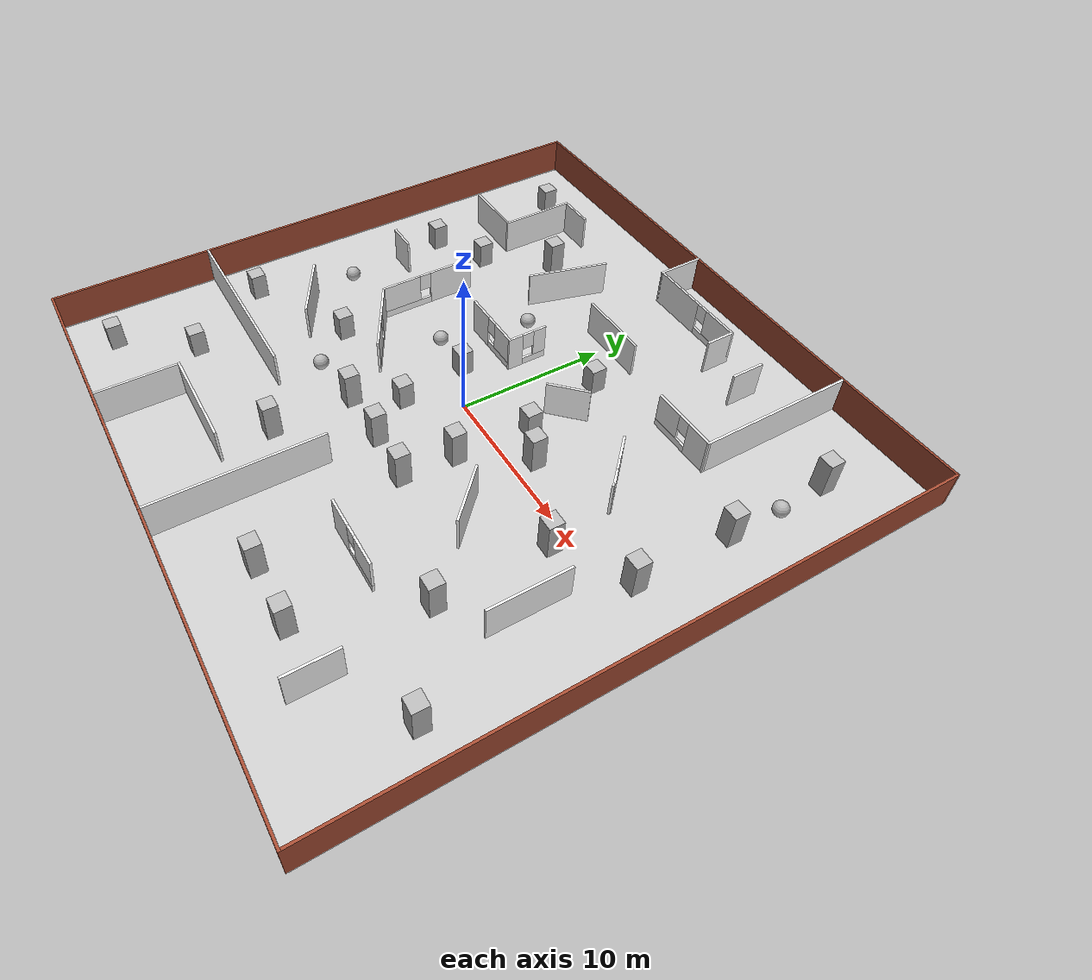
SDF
<sdf version="1.6">
 <world name="default">
  <light name="sun" type="directional">
   <pose>0 0 10 0 -0 0</pose>
   <diffuse>0.8 0.8 0.8 1</diffuse>
   <specular>0.2 0.2 0.2 1</specular>
   <attenuation>
    <range>1000</range>
    <constant>0.9</constant>
    <linear>0.01</linear>
    <quadratic>0.001</quadratic>
   </attenuation>
   <direction>-0.5 0.1 -0.9</direction>
  </light>
  <model name="my_ground_plane">
   <static>1</static>
   <link name="link">
    <collision name="collision">
     <geometry><plane><normal>0 0 1</normal><size>40 40</size></plane></geometry>
     <surface><friction><ode><mu>100</mu><mu2>50</mu2></ode></friction></surface>
    </collision>
    <visual name="visual">
     <cast_shadows>0</cast_shadows>
     <geometry><plane><normal>0 0 1</normal><size>40 40</size></plane></geometry>
     <material>
      <script>
       <uri>model://woodground/materials/scripts</uri>
       <uri>model://woodground/materials/textures</uri>
       <name>WoodGround/Image</name>
      </script>
     </material>
    </visual>
   </link>
   <pose>0.065028 0.039956 0 0 -0 0</pose>
  </model>
  <gravity>0 0 -9.8</gravity>
  <magnetic_field>6e-06 2.3e-05 -4.2e-05</magnetic_field>
  <atmosphere type="adiabatic"/>
  <physics name="default_physics" default="0" type="ode">
   <max_step_size>0.001</max_step_size>
   <real_time_factor>1</real_time_factor>
   <real_time_update_rate>1000</real_time_update_rate>
  </physics>
  <scene><ambient>0.4 0.4 0.4 1</ambient><background>0.7 0.7 0.7 1</background><shadows>1</shadows></scene>
  <audio><device>default</device></audio>
  <spherical_coordinates>
   <surface_model>EARTH_WGS84</surface_model>
   <latitude_deg>0</latitude_deg>
   <longitude_deg>0</longitude_deg>
   <elevation>0</elevation>
   <heading_deg>0</heading_deg>
  </spherical_coordinates>
  <model name="house_0">
   <pose>0 0.0174 0 0 -0 0</pose>
   <link name="Wall_0">
    <collision name="Wall_0_Collision">
     <geometry><box><size>40.15 0.15 2.5</size></box></geometry>
     <pose>0 0 1.25 0 -0 0</pose>
    </collision>
    <visual name="Wall_0_Visual">
     <pose>0 0 1.25 0 -0 0</pose>
     <geometry><box><size>40.15 0.15 2.5</size></box></geometry>
     <material>
      <script><uri>file://media/materials/scripts/gazebo.material</uri><name>Gazebo/Bricks</name></script>
      <ambient>1 1 1 1</ambient>
     </material>
     <meta><layer>0</layer></meta>
    </visual>
    <pose>0 -20.0174 0 0 -0 0</pose>
   </link>
   <link name="Wall_10">
    <collision name="Wall_10_Collision">
     <geometry><box><size>2.5 0.15 2.5</size></box></geometry>
     <pose>0 0 1.25 0 -0 0</pose>
    </collision>
    <visual name="Wall_10_Visual">
     <pose>0 0 1.25 0 -0 0</pose>
     <geometry><box><size>2.5 0.15 2.5</size></box></geometry>
     <material>
      <script><uri>file://media/materials/scripts/wallpaper.material</uri><name>wallpaper/wallpaper3</name></script>
      <ambient>1 1 1 1</ambient>
     </material>
     <meta><layer>0</layer></meta>
    </visual>
    <pose>-11.265 15.818 0 0 -0 0</pose>
   </link>
   <link name="Wall_13">
    <collision name="Wall_13_Collision">
     <geometry><box><size>11 0.15 2.5</size></box></geometry>
     <pose>0 0 1.25 0 -0 0</pose>
    </collision>
    <visual name="Wall_13_Visual">
     <pose>0 0 1.25 0 -0 0</pose>
     <geometry><box><size>11 0.15 2.5</size></box></geometry>
     <material>
      <script><uri>file://media/materials/scripts/wallpaper.material</uri><name>wallpaper/wallpaper4</name></script>
      <ambient>1 1 1 1</ambient>
     </material>
     <meta><layer>0</layer></meta>
    </visual>
    <pose>-0.021227 -14.5085 0 0 -0 1.5708</pose>
   </link>
   <link name="Wall_15">
    <collision name="Wall_15_Collision">
     <geometry><box><size>12.5 0.15 2.5</size></box></geometry>
     <pose>0 0 1.25 0 -0 0</pose>
    </collision>
    <visual name="Wall_15_Visual">
     <pose>0 0 1.25 0 -0 0</pose>
     <geometry><box><size>12.5 0.15 2.5</size></box></geometry>
     <material>
      <script><uri>file://media/materials/scripts/wallpaper.material</uri><name>wallpaper/wallpaper5</name></script>
      <ambient>1 1 1 1</ambient>
     </material>
     <meta><layer>0</layer></meta>
    </visual>
    <pose>-13.7911 -9.28806 0 0 -0 0</pose>
   </link>
   <link name="Wall_18">
    <collision name="Wall_18_Collision">
     <geometry><box><size>5.5 0.15 2.5</size></box></geometry>
     <pose>0 0 1.25 0 -0 0</pose>
    </collision>
    <visual name="Wall_18_Visual">
     <pose>0 0 1.25 0 -0 0</pose>
     <geometry><box><size>5.5 0.15 2.5</size></box></geometry>
     <material>
      <script><uri>file://media/materials/scripts/wallpaper.material</uri><name>wallpaper/wallpaper6</name></script>
      <ambient>1 1 1 1</ambient>
     </material>
     <meta><layer>0</layer></meta>
    </visual>
    <pose>-9.87128 -17.3196 0 0 -0 1.5708</pose>
   </link>
   <link name="Wall_2">
    <collision name="Wall_2_Collision">
     <geometry><box><size>40.15 0.15 2.5</size></box></geometry>
     <pose>0 0 1.25 0 -0 0</pose>
    </collision>
    <visual name="Wall_2_Visual">
     <pose>0 0 1.25 0 -0 0</pose>
     <geometry><box><size>40.15 0.15 2.5</size></box></geometry>
     <material>
      <script><uri>file://media/materials/scripts/gazebo.material</uri><name>Gazebo/Bricks</name></script>
      <ambient>1 1 1 1</ambient>
     </material>
     <meta><layer>0</layer></meta>
    </visual>
    <pose>-20 -0.01738 0 0 -0 1.5708</pose>
   </link>
   <link name="Wall_20">
    <collision name="Wall_20_Collision">
     <geometry><box><size>6.75 0.15 2.5</size></box></geometry>
     <pose>0 0 1.25 0 -0 0</pose>
    </collision>
    <visual name="Wall_20_Visual">
     <pose>0 0 1.25 0 -0 0</pose>
     <geometry><box><size>6.75 0.15 2.5</size></box></geometry>
     <material>
      <script><uri>file://media/materials/scripts/wallpaper.material</uri><name>wallpaper/wallpaper7</name></script>
      <ambient>1 1 1 1</ambient>
     </material>
     <meta><layer>0</layer></meta>
    </visual>
    <pose>-6.57128 -14.6446 0 0 -0 0</pose>
   </link>
   <link name="Wall_22">
    <collision name="Wall_22_Collision">
     <geometry><box><size>0.25 0.15 2.5</size></box></geometry>
     <pose>0 0 1.25 0 -0 0</pose>
    </collision>
    <visual name="Wall_22_Visual">
     <pose>0 0 1.25 0 -0 0</pose>
     <geometry><box><size>0.25 0.15 2.5</size></box></geometry>
     <material>
      <script><uri>file://media/materials/scripts/wallpaper.material</uri><name>wallpaper/wallpaper8</name></script>
      <ambient>1 1 1 1</ambient>
     </material>
     <meta><layer>0</layer></meta>
    </visual>
    <pose>11.211 3.05252 0 0 -0 2.0944</pose>
   </link>
   <link name="Wall_23">
    <pose>9.91319 4.36861 0 0 -0 2.35619</pose>
    <visual name="Wall_23_Visual_0">
     <pose>-1.28689 0 1.25 0 -0 0</pose>
     <geometry><box><size>1.17622 0.15 2.5</size></box></geometry>
     <material>
      <script><uri>file://media/materials/scripts/wallpaper.material</uri><name>wallpaper/wallpaper9</name></script>
      <ambient>1 1 1 1</ambient>
     </material>
     <meta><layer>0</layer></meta>
    </visual>
    <collision name="Wall_23_Collision_0">
     <geometry><box><size>1.17622 0.15 2.5</size></box></geometry>
     <pose>-1.28689 0 1.25 0 -0 0</pose>
    </collision>
    <visual name="Wall_23_Visual_1">
     <pose>0.588111 0 0.25 0 -0 0</pose>
     <geometry><box><size>2.57378 0.15 0.5</size></box></geometry>
     <material>
      <script>
       <uri>file://media/materials/scripts/wallpaper.material</uri>
       <name>wallpaper/wallpaper10</name>
      </script>
      <ambient>1 1 1 1</ambient>
     </material>
     <meta><layer>0</layer></meta>
    </visual>
    <collision name="Wall_23_Collision_1">
     <geometry><box><size>2.57378 0.15 0.5</size></box></geometry>
     <pose>0.588111 0 0.25 0 -0 0</pose>
    </collision>
    <visual name="Wall_23_Visual_2">
     <pose>0.988111 0 1.5 0 -0 0</pose>
     <geometry><box><size>1.77378 0.15 2</size></box></geometry>
     <material>
      <script>
       <uri>file://media/materials/scripts/wallpaper.material</uri>
       <name>wallpaper/wallpaper11</name>
      </script>
      <ambient>1 1 1 1</ambient>
     </material>
     <meta><layer>0</layer></meta>
    </visual>
    <collision name="Wall_23_Collision_2">
     <geometry><box><size>1.77378 0.15 2</size></box></geometry>
     <pose>0.988111 0 1.5 0 -0 0</pose>
    </collision>
    <visual name="Wall_23_Visual_3">
     <pose>-0.298779 0 1.9 0 -0 0</pose>
     <geometry><box><size>0.8 0.15 1.2</size></box></geometry>
     <material>
      <script>
       <uri>file://media/materials/scripts/wallpaper.material</uri>
       <name>wallpaper/wallpaper12</name>
      </script>
      <ambient>1 1 1 1</ambient>
     </material>
     <meta><layer>0</layer></meta>
    </visual>
    <collision name="Wall_23_Collision_3">
     <geometry><box><size>0.8 0.15 1.2</size></box></geometry>
     <pose>-0.298779 0 1.9 0 -0 0</pose>
    </collision>
   </link>
   <link name="Wall_25">
    <collision name="Wall_25_Collision">
     <geometry><box><size>4.75 0.15 2.5</size></box></geometry>
     <pose>0 0 1.25 0 -0 0</pose>
    </collision>
    <visual name="Wall_25_Visual">
     <pose>0 0 1.25 0 -0 0</pose>
     <geometry><box><size>4.75 0.15 2.5</size></box></geometry>
     <material>
      <script>
       <uri>file://media/materials/scripts/wallpaper.material</uri>
       <name>wallpaper/wallpaper13</name>
      </script>
      <ambient>1 1 1 1</ambient>
     </material>
     <meta><layer>0</layer></meta>
    </visual>
    <pose>0.382179 10.8403 0 0 -0 0</pose>
   </link>
   <link name="Wall_27">
    <pose>-10.116 2.82942 0 0 -0 -1.5708</pose>
    <visual name="Wall_27_Visual_0">
     <pose>-1.8027 0 1.25 0 -0 0</pose>
     <geometry><box><size>3.14461 0.15 2.5</size></box></geometry>
     <material>
      <script>
       <uri>file://media/materials/scripts/wallpaper.material</uri>
       <name>wallpaper/wallpaper11</name>
      </script>
      <ambient>1 1 1 1</ambient>
     </material>
     <meta><layer>0</layer></meta>
    </visual>
    <collision name="Wall_27_Collision_0">
     <geometry><box><size>3.14461 0.15 2.5</size></box></geometry>
     <pose>-1.8027 0 1.25 0 -0 0</pose>
    </collision>
    <visual name="Wall_27_Visual_1">
     <pose>1.5723 0 0.25 0 -0 0</pose>
     <geometry><box><size>3.60539 0.15 0.5</size></box></geometry>
     <material>
      <script>
       <uri>file://media/materials/scripts/wallpaper.material</uri>
       <name>wallpaper/wallpaper10</name>
      </script>
      <ambient>1 1 1 1</ambient>
     </material>
     <meta><layer>0</layer></meta>
    </visual>
    <collision name="Wall_27_Collision_1">
     <geometry><box><size>3.60539 0.15 0.5</size></box></geometry>
     <pose>1.5723 0 0.25 0 -0 0</pose>
    </collision>
    <visual name="Wall_27_Visual_2">
     <pose>1.9723 0 1.5 0 -0 0</pose>
     <geometry><box><size>2.80539 0.15 2</size></box></geometry>
     <material>
      <script><uri>file://media/materials/scripts/wallpaper.material</uri><name>wallpaper/wallpaper9</name></script>
      <ambient>1 1 1 1</ambient>
     </material>
     <meta><layer>0</layer></meta>
    </visual>
    <collision name="Wall_27_Collision_2">
     <geometry><box><size>2.80539 0.15 2</size></box></geometry>
     <pose>1.9723 0 1.5 0 -0 0</pose>
    </collision>
    <visual name="Wall_27_Visual_3">
     <pose>0.169607 0 1.9 0 -0 0</pose>
     <geometry><box><size>0.8 0.15 1.2</size></box></geometry>
     <material>
      <script><uri>file://media/materials/scripts/wallpaper.material</uri><name>wallpaper/wallpaper8</name></script>
      <ambient>1 1 1 1</ambient>
     </material>
     <meta><layer>0</layer></meta>
    </visual>
    <collision name="Wall_27_Collision_3">
     <geometry><box><size>0.8 0.15 1.2</size></box></geometry>
     <pose>0.169607 0 1.9 0 -0 0</pose>
    </collision>
   </link>
   <link name="Wall_28">
    <pose>-7.79938 -1.80808 0 0 -0 -0.523599</pose>
    <visual name="Wall_28_Visual_0">
     <pose>-1.51732 0 1.25 0 -0 0</pose>
     <geometry><box><size>2.46536 0.15 2.5</size></box></geometry>
     <material>
      <script><uri>file://media/materials/scripts/wallpaper.material</uri><name>wallpaper/wallpaper7</name></script>
      <ambient>1 1 1 1</ambient>
     </material>
     <meta><layer>0</layer></meta>
    </visual>
    <collision name="Wall_28_Collision_0">
     <geometry><box><size>2.46536 0.15 2.5</size></box></geometry>
     <pose>-1.51732 0 1.25 0 -0 0</pose>
    </collision>
    <visual name="Wall_28_Visual_1">
     <pose>1.23268 0 0.25 0 -0 0</pose>
     <geometry><box><size>3.03464 0.15 0.5</size></box></geometry>
     <material>
      <script><uri>file://media/materials/scripts/wallpaper.material</uri><name>wallpaper/wallpaper6</name></script>
      <ambient>1 1 1 1</ambient>
     </material>
     <meta><layer>0</layer></meta>
    </visual>
    <collision name="Wall_28_Collision_1">
     <geometry><box><size>3.03464 0.15 0.5</size></box></geometry>
     <pose>1.23268 0 0.25 0 -0 0</pose>
    </collision>
    <visual name="Wall_28_Visual_2">
     <pose>1.63268 0 1.5 0 -0 0</pose>
     <geometry><box><size>2.23464 0.15 2</size></box></geometry>
     <material>
      <script><uri>file://media/materials/scripts/wallpaper.material</uri><name>wallpaper/wallpaper5</name></script>
      <ambient>1 1 1 1</ambient>
     </material>
     <meta><layer>0</layer></meta>
    </visual>
    <collision name="Wall_28_Collision_2">
     <geometry><box><size>2.23464 0.15 2</size></box></geometry>
     <pose>1.63268 0 1.5 0 -0 0</pose>
    </collision>
    <visual name="Wall_28_Visual_3">
     <pose>0.115362 0 1.9 0 -0 0</pose>
     <geometry><box><size>0.8 0.15 1.2</size></box></geometry>
     <material>
      <script><uri>file://media/materials/scripts/wallpaper.material</uri><name>wallpaper/wallpaper4</name></script>
      <ambient>1 1 1 1</ambient>
     </material>
     <meta><layer>0</layer></meta>
    </visual>
    <collision name="Wall_28_Collision_3">
     <geometry><box><size>0.8 0.15 1.2</size></box></geometry>
     <pose>0.115362 0 1.9 0 -0 0</pose>
    </collision>
   </link>
   <link name="Wall_30">
    <collision name="Wall_30_Collision">
     <geometry><box><size>4 0.15 2.5</size></box></geometry>
     <pose>0 0 1.25 0 -0 0</pose>
    </collision>
    <visual name="Wall_30_Visual">
     <pose>0 0 1.25 0 -0 0</pose>
     <geometry><box><size>4 0.15 2.5</size></box></geometry>
     <material>
      <script><uri>file://media/materials/scripts/wallpaper.material</uri><name>wallpaper/wallpaper3</name></script>
      <ambient>1 1 1 1</ambient>
     </material>
     <meta><layer>0</layer></meta>
    </visual>
    <pose>7.70272 -4.16411 0 0 -0 -0.785398</pose>
   </link>
   <link name="Wall_32">
    <pose>6.92849 -10.7564 0 0 -0 0</pose>
    <visual name="Wall_32_Visual_0">
     <pose>-1.40369 0 1.25 0 -0 0</pose>
     <geometry><box><size>1.94263 0.15 2.5</size></box></geometry>
     <material>
      <script><uri>file://media/materials/scripts/wallpaper.material</uri><name>wallpaper/wallpaper2</name></script>
      <ambient>1 1 1 1</ambient>
     </material>
     <meta><layer>0</layer></meta>
    </visual>
    <collision name="Wall_32_Collision_0">
     <geometry><box><size>1.94263 0.15 2.5</size></box></geometry>
     <pose>-1.40369 0 1.25 0 -0 0</pose>
    </collision>
    <visual name="Wall_32_Visual_1">
     <pose>0.971313 0 0.25 0 -0 0</pose>
     <geometry><box><size>2.80737 0.15 0.5</size></box></geometry>
     <material>
      <script><uri>file://media/materials/scripts/wallpaper.material</uri><name>wallpaper/wallpaper1</name></script>
      <ambient>1 1 1 1</ambient>
     </material>
     <meta><layer>0</layer></meta>
    </visual>
    <collision name="Wall_32_Collision_1">
     <geometry><box><size>2.80737 0.15 0.5</size></box></geometry>
     <pose>0.971313 0 0.25 0 -0 0</pose>
    </collision>
    <visual name="Wall_32_Visual_2">
     <pose>1.37131 0 1.5 0 -0 0</pose>
     <geometry><box><size>2.00738 0.15 2</size></box></geometry>
     <material>
      <script><uri>file://media/materials/scripts/wallpaper.material</uri><name>wallpaper/wallpaper2</name></script>
      <ambient>1 1 1 1</ambient>
     </material>
     <meta><layer>0</layer></meta>
    </visual>
    <collision name="Wall_32_Collision_2">
     <geometry><box><size>2.00738 0.15 2</size></box></geometry>
     <pose>1.37131 0 1.5 0 -0 0</pose>
    </collision>
    <visual name="Wall_32_Visual_3">
     <pose>-0.032375 0 1.9 0 -0 0</pose>
     <geometry><box><size>0.8 0.15 1.2</size></box></geometry>
     <material>
      <script><uri>file://media/materials/scripts/wallpaper.material</uri><name>wallpaper/wallpaper3</name></script>
      <ambient>1 1 1 1</ambient>
     </material>
     <meta><layer>0</layer></meta>
    </visual>
    <collision name="Wall_32_Collision_3">
     <geometry><box><size>0.8 0.15 1.2</size></box></geometry>
     <pose>-0.032375 0 1.9 0 -0 0</pose>
    </collision>
   </link>
   <link name="Wall_34">
    <collision name="Wall_34_Collision">
     <geometry><box><size>3.25 0.15 2.5</size></box></geometry>
     <pose>0 0 1.25 0 -0 0</pose>
    </collision>
    <visual name="Wall_34_Visual">
     <pose>0 0 1.25 0 -0 0</pose>
     <geometry><box><size>3.25 0.15 2.5</size></box></geometry>
     <material>
      <script><uri>file://media/materials/scripts/wallpaper.material</uri><name>wallpaper/wallpaper4</name></script>
      <ambient>1 1 1 1</ambient>
     </material>
     <meta><layer>0</layer></meta>
    </visual>
    <pose>12.8879 -15.5692 0 0 -0 1.5708</pose>
   </link>
   <link name="Wall_36">
    <collision name="Wall_36_Collision">
     <geometry><box><size>2.25 0.15 2.5</size></box></geometry>
     <pose>0 0 1.25 0 -0 0</pose>
    </collision>
    <visual name="Wall_36_Visual">
     <pose>0 0 1.25 0 -0 0</pose>
     <geometry><box><size>2.25 0.15 2.5</size></box></geometry>
     <material>
      <script><uri>file://media/materials/scripts/wallpaper.material</uri><name>wallpaper/wallpaper5</name></script>
      <ambient>1 1 1 1</ambient>
     </material>
     <meta><layer>0</layer></meta>
    </visual>
    <pose>7.93223 15.5 0 0 -0 1.5708</pose>
   </link>
   <link name="Wall_38">
    <collision name="Wall_38_Collision">
     <geometry><box><size>2.75 0.15 2.5</size></box></geometry>
     <pose>0 0 1.25 0 -0 0</pose>
    </collision>
    <visual name="Wall_38_Visual">
     <pose>0 0 1.25 0 -0 0</pose>
     <geometry><box><size>2.75 0.15 2.5</size></box></geometry>
     <material>
      <script><uri>file://media/materials/scripts/wallpaper.material</uri><name>wallpaper/wallpaper6</name></script>
      <ambient>1 1 1 1</ambient>
     </material>
     <meta><layer>0</layer></meta>
    </visual>
    <pose>3.77349 5.09088 0 0 -0 0.785398</pose>
   </link>
   <link name="Wall_4">
    <collision name="Wall_4_Collision">
     <geometry><box><size>40.15 0.15 2.5</size></box></geometry>
     <pose>0 0 1.25 0 -0 0</pose>
    </collision>
    <visual name="Wall_4_Visual">
     <pose>0 0 1.25 0 -0 0</pose>
     <geometry><box><size>40.15 0.15 2.5</size></box></geometry>
     <material>
      <script><uri>file://media/materials/scripts/gazebo.material</uri><name>Gazebo/Bricks</name></script>
      <ambient>1 1 1 1</ambient>
     </material>
     <meta><layer>0</layer></meta>
    </visual>
    <pose>0 19.9826 0 0 -0 0</pose>
   </link>
   <link name="Wall_40">
    <collision name="Wall_40_Collision">
     <geometry><box><size>5.5 0.15 2.5</size></box></geometry>
     <pose>0 0 1.25 0 -0 0</pose>
    </collision>
    <visual name="Wall_40_Visual">
     <pose>0 0 1.25 0 -0 0</pose>
     <geometry><box><size>5.5 0.15 2.5</size></box></geometry>
     <material>
      <script><uri>file://media/materials/scripts/wallpaper.material</uri><name>wallpaper/wallpaper7</name></script>
      <ambient>1 1 1 1</ambient>
     </material>
     <meta><layer>0</layer></meta>
    </visual>
    <pose>-5.75283 11.4664 0 0 -0 1.309</pose>
   </link>
   <link name="Wall_42">
    <collision name="Wall_42_Collision">
     <geometry><box><size>2 0.15 2.5</size></box></geometry>
     <pose>0 0 1.25 0 -0 0</pose>
    </collision>
    <visual name="Wall_42_Visual">
     <pose>0 0 1.25 0 -0 0</pose>
     <geometry><box><size>2 0.15 2.5</size></box></geometry>
     <material>
      <script><uri>file://media/materials/scripts/wallpaper.material</uri><name>wallpaper/wallpaper8</name></script>
      <ambient>1 1 1 1</ambient>
     </material>
     <meta><layer>0</layer></meta>
    </visual>
    <pose>-14.7118 3.25394 0 0 -0 3.14159</pose>
   </link>
   <link name="Wall_45">
    <collision name="Wall_45_Collision">
     <geometry><box><size>10.5 0.15 2.5</size></box></geometry>
     <pose>0 0 1.25 0 -0 0</pose>
    </collision>
    <visual name="Wall_45_Visual">
     <pose>0 0 1.25 0 -0 0</pose>
     <geometry><box><size>10.5 0.15 2.5</size></box></geometry>
     <material>
      <script><uri>file://media/materials/scripts/wallpaper.material</uri><name>wallpaper/wallpaper9</name></script>
      <ambient>1 1 1 1</ambient>
     </material>
     <meta><layer>0</layer></meta>
    </visual>
    <pose>11.4195 14.72 0 0 -0 -1.5708</pose>
   </link>
   <link name="Wall_46">
    <pose>9.24452 9.54502 0 0 -0 3.14159</pose>
    <visual name="Wall_46_Visual_0">
     <pose>-1.34506 0 1.25 0 -0 0</pose>
     <geometry><box><size>1.80987 0.15 2.5</size></box></geometry>
     <material>
      <script><uri>file://media/materials/scripts/wallpaper.material</uri><name>wallpaper/wallpaper9</name></script>
      <ambient>1 1 1 1</ambient>
     </material>
     <meta><layer>0</layer></meta>
    </visual>
    <collision name="Wall_46_Collision_0">
     <geometry><box><size>1.80987 0.15 2.5</size></box></geometry>
     <pose>-1.34506 0 1.25 0 -0 0</pose>
    </collision>
    <visual name="Wall_46_Visual_1">
     <pose>0.904936 0 0.25 0 -0 0</pose>
     <geometry><box><size>2.69013 0.15 0.5</size></box></geometry>
     <material>
      <script><uri>file://media/materials/scripts/wallpaper.material</uri><name>wallpaper/wallpaper8</name></script>
      <ambient>1 1 1 1</ambient>
     </material>
     <meta><layer>0</layer></meta>
    </visual>
    <collision name="Wall_46_Collision_1">
     <geometry><box><size>2.69013 0.15 0.5</size></box></geometry>
     <pose>0.904936 0 0.25 0 -0 0</pose>
    </collision>
    <visual name="Wall_46_Visual_2">
     <pose>1.30494 0 1.5 0 -0 0</pose>
     <geometry><box><size>1.89013 0.15 2</size></box></geometry>
     <material>
      <script><uri>file://media/materials/scripts/wallpaper.material</uri><name>wallpaper/wallpaper7</name></script>
      <ambient>1 1 1 1</ambient>
     </material>
     <meta><layer>0</layer></meta>
    </visual>
    <collision name="Wall_46_Collision_2">
     <geometry><box><size>1.89013 0.15 2</size></box></geometry>
     <pose>1.30494 0 1.5 0 -0 0</pose>
    </collision>
    <visual name="Wall_46_Visual_3">
     <pose>-0.040128 0 1.9 0 -0 0</pose>
     <geometry><box><size>0.8 0.15 1.2</size></box></geometry>
     <material>
      <script><uri>file://media/materials/scripts/wallpaper.material</uri><name>wallpaper/wallpaper6</name></script>
      <ambient>1 1 1 1</ambient>
     </material>
     <meta><layer>0</layer></meta>
    </visual>
    <collision name="Wall_46_Collision_3">
     <geometry><box><size>0.8 0.15 1.2</size></box></geometry>
     <pose>-0.040128 0 1.9 0 -0 0</pose>
    </collision>
   </link>
   <link name="Wall_48">
    <collision name="Wall_48_Collision">
     <geometry><box><size>3.25 0.15 2.5</size></box></geometry>
     <pose>0 0 1.25 0 -0 0</pose>
    </collision>
    <visual name="Wall_48_Visual">
     <pose>0 0 1.25 0 -0 0</pose>
     <geometry><box><size>3.25 0.15 2.5</size></box></geometry>
     <material>
      <script><uri>file://media/materials/scripts/wallpaper.material</uri><name>wallpaper/wallpaper3</name></script>
      <ambient>1 1 1 1</ambient>
     </material>
     <meta><layer>0</layer></meta>
    </visual>
    <pose>-2.2849 18.4674 0 0 -0 -1.5708</pose>
   </link>
   <link name="Wall_49">
    <pose>1.2651 16.9174 0 0 -0 0</pose>
    <visual name="Wall_49_Visual_0">
     <pose>-1.67355 0 1.25 0 -0 0</pose>
     <geometry><box><size>3.9029 0.15 2.5</size></box></geometry>
     <material>
      <script>
       <uri>file://media/materials/scripts/wallpaper.material</uri>
       <name>wallpaper/wallpaper10</name>
      </script>
      <ambient>1 1 1 1</ambient>
     </material>
     <meta><layer>0</layer></meta>
    </visual>
    <collision name="Wall_49_Collision_0">
     <geometry><box><size>3.9029 0.15 2.5</size></box></geometry>
     <pose>-1.67355 0 1.25 0 -0 0</pose>
    </collision>
    <visual name="Wall_49_Visual_1">
     <pose>1.95145 0 0.25 0 -0 0</pose>
     <geometry><box><size>3.3471 0.15 0.5</size></box></geometry>
     <material>
      <script>
       <uri>file://media/materials/scripts/wallpaper.material</uri>
       <name>wallpaper/wallpaper11</name>
      </script>
      <ambient>1 1 1 1</ambient>
     </material>
     <meta><layer>0</layer></meta>
    </visual>
    <collision name="Wall_49_Collision_1">
     <geometry><box><size>3.3471 0.15 0.5</size></box></geometry>
     <pose>1.95145 0 0.25 0 -0 0</pose>
    </collision>
    <visual name="Wall_49_Visual_2">
     <pose>2.35145 0 1.5 0 -0 0</pose>
     <geometry><box><size>2.54711 0.15 2</size></box></geometry>
     <material>
      <script>
       <uri>file://media/materials/scripts/wallpaper.material</uri>
       <name>wallpaper/wallpaper12</name>
      </script>
      <ambient>1 1 1 1</ambient>
     </material>
     <meta><layer>0</layer></meta>
    </visual>
    <collision name="Wall_49_Collision_2">
     <geometry><box><size>2.54711 0.15 2</size></box></geometry>
     <pose>2.35145 0 1.5 0 -0 0</pose>
    </collision>
    <visual name="Wall_49_Visual_3">
     <pose>0.677895 0 1.9 0 -0 0</pose>
     <geometry><box><size>0.8 0.15 1.2</size></box></geometry>
     <material>
      <script>
       <uri>file://media/materials/scripts/wallpaper.material</uri>
       <name>wallpaper/wallpaper13</name>
      </script>
      <ambient>1 1 1 1</ambient>
     </material>
     <meta><layer>0</layer></meta>
    </visual>
    <collision name="Wall_49_Collision_3">
     <geometry><box><size>0.8 0.15 1.2</size></box></geometry>
     <pose>0.677895 0 1.9 0 -0 0</pose>
    </collision>
   </link>
   <link name="Wall_50">
    <collision name="Wall_50_Collision">
     <geometry><box><size>2 0.15 2.5</size></box></geometry>
     <pose>0 0 1.25 0 -0 0</pose>
    </collision>
    <visual name="Wall_50_Visual">
     <pose>0 0 1.25 0 -0 0</pose>
     <geometry><box><size>2 0.15 2.5</size></box></geometry>
     <material>
      <script><uri>file://media/materials/scripts/wallpaper.material</uri><name>wallpaper/wallpaper4</name></script>
      <ambient>1 1 1 1</ambient>
     </material>
     <meta><layer>0</layer></meta>
    </visual>
    <pose>4.8151 15.9924 0 0 -0 -1.5708</pose>
   </link>
   <link name="Wall_53">
    <collision name="Wall_53_Collision">
     <geometry><box><size>4.75 0.15 2.5</size></box></geometry>
     <pose>0 0 1.25 0 -0 0</pose>
    </collision>
    <visual name="Wall_53_Visual">
     <pose>0 0 1.25 0 -0 0</pose>
     <geometry><box><size>4.75 0.15 2.5</size></box></geometry>
     <material>
      <script><uri>file://media/materials/scripts/wallpaper.material</uri><name>wallpaper/wallpaper5</name></script>
      <ambient>1 1 1 1</ambient>
     </material>
     <meta><layer>0</layer></meta>
    </visual>
    <pose>-12.835 -4.62591 0 0 -0 -0.523599</pose>
   </link>
   <link name="Wall_55">
    <pose>-3.78073 4.23282 0 0 -0 0</pose>
    <visual name="Wall_55_Visual_0">
     <pose>-1.31125 0 1.25 0 -0 0</pose>
     <geometry><box><size>1.8775 0.15 2.5</size></box></geometry>
     <material>
      <script><uri>file://media/materials/scripts/wallpaper.material</uri><name>wallpaper/wallpaper6</name></script>
      <ambient>1 1 1 1</ambient>
     </material>
     <meta><layer>0</layer></meta>
    </visual>
    <collision name="Wall_55_Collision_0">
     <geometry><box><size>1.8775 0.15 2.5</size></box></geometry>
     <pose>-1.31125 0 1.25 0 -0 0</pose>
    </collision>
    <visual name="Wall_55_Visual_1">
     <pose>0.938748 0 0.25 0 -0 0</pose>
     <geometry><box><size>2.6225 0.15 0.5</size></box></geometry>
     <material>
      <script><uri>file://media/materials/scripts/wallpaper.material</uri><name>wallpaper/wallpaper7</name></script>
      <ambient>1 1 1 1</ambient>
     </material>
     <meta><layer>0</layer></meta>
    </visual>
    <collision name="Wall_55_Collision_1">
     <geometry><box><size>2.6225 0.15 0.5</size></box></geometry>
     <pose>0.938748 0 0.25 0 -0 0</pose>
    </collision>
    <visual name="Wall_55_Visual_2">
     <pose>1.33875 0 1.5 0 -0 0</pose>
     <geometry><box><size>1.8225 0.15 2</size></box></geometry>
     <material>
      <script><uri>file://media/materials/scripts/wallpaper.material</uri><name>wallpaper/wallpaper8</name></script>
      <ambient>1 1 1 1</ambient>
     </material>
     <meta><layer>0</layer></meta>
    </visual>
    <collision name="Wall_55_Collision_2">
     <geometry><box><size>1.8225 0.15 2</size></box></geometry>
     <pose>1.33875 0 1.5 0 -0 0</pose>
    </collision>
    <visual name="Wall_55_Visual_3">
     <pose>0.027496 0 1.9 0 -0 0</pose>
     <geometry><box><size>0.8 0.15 1.2</size></box></geometry>
     <material>
      <script><uri>file://media/materials/scripts/wallpaper.material</uri><name>wallpaper/wallpaper1</name></script>
      <ambient>1 1 1 1</ambient>
     </material>
     <meta><layer>0</layer></meta>
    </visual>
    <collision name="Wall_55_Collision_3">
     <geometry><box><size>0.8 0.15 1.2</size></box></geometry>
     <pose>0.027496 0 1.9 0 -0 0</pose>
    </collision>
   </link>
   <link name="Wall_56">
    <pose>-1.60573 5.53282 0 0 -0 1.5708</pose>
    <visual name="Wall_56_Visual_0">
     <pose>-0.851336 0 1.25 0 -0 0</pose>
     <geometry><box><size>1.04733 0.15 2.5</size></box></geometry>
     <material>
      <script><uri>file://media/materials/scripts/wallpaper.material</uri><name>wallpaper/wallpaper2</name></script>
      <ambient>1 1 1 1</ambient>
     </material>
     <meta><layer>0</layer></meta>
    </visual>
    <collision name="Wall_56_Collision_0">
     <geometry><box><size>1.04733 0.15 2.5</size></box></geometry>
     <pose>-0.851336 0 1.25 0 -0 0</pose>
    </collision>
    <visual name="Wall_56_Visual_1">
     <pose>0.523664 0 0.25 0 -0 0</pose>
     <geometry><box><size>1.70267 0.15 0.5</size></box></geometry>
     <material>
      <script><uri>file://media/materials/scripts/wallpaper.material</uri><name>wallpaper/wallpaper9</name></script>
      <ambient>1 1 1 1</ambient>
     </material>
     <meta><layer>0</layer></meta>
    </visual>
    <collision name="Wall_56_Collision_1">
     <geometry><box><size>1.70267 0.15 0.5</size></box></geometry>
     <pose>0.523664 0 0.25 0 -0 0</pose>
    </collision>
    <visual name="Wall_56_Visual_2">
     <pose>0.923664 0 1.5 0 -0 0</pose>
     <geometry><box><size>0.902672 0.15 2</size></box></geometry>
     <material>
      <script><uri>file://media/materials/scripts/wallpaper.material</uri><name>wallpaper/wallpaper2</name></script>
      <ambient>1 1 1 1</ambient>
     </material>
     <meta><layer>0</layer></meta>
    </visual>
    <collision name="Wall_56_Collision_2">
     <geometry><box><size>0.902672 0.15 2</size></box></geometry>
     <pose>0.923664 0 1.5 0 -0 0</pose>
    </collision>
    <visual name="Wall_56_Visual_3">
     <pose>0.072328 0 1.9 0 -0 0</pose>
     <geometry><box><size>0.8 0.15 1.2</size></box></geometry>
     <material>
      <script><uri>file://media/materials/scripts/wallpaper.material</uri><name>wallpaper/wallpaper1</name></script>
      <ambient>1 1 1 1</ambient>
     </material>
     <meta><layer>0</layer></meta>
    </visual>
    <collision name="Wall_56_Collision_3">
     <geometry><box><size>0.8 0.15 1.2</size></box></geometry>
     <pose>0.072328 0 1.9 0 -0 0</pose>
    </collision>
   </link>
   <link name="Wall_58">
    <collision name="Wall_58_Collision">
     <geometry><box><size>5.25 0.15 2.5</size></box></geometry>
     <pose>0 0 1.25 0 -0 0</pose>
    </collision>
    <visual name="Wall_58_Visual">
     <pose>0 0 1.25 0 -0 0</pose>
     <geometry><box><size>5.25 0.15 2.5</size></box></geometry>
     <material>
      <script><uri>file://media/materials/scripts/wallpaper.material</uri><name>wallpaper/wallpaper3</name></script>
      <ambient>1 1 1 1</ambient>
     </material>
     <meta><layer>0</layer></meta>
    </visual>
    <pose>14.5397 -4.43522 0 0 -0 -1.5708</pose>
   </link>
   <link name="Wall_6">
    <collision name="Wall_6_Collision">
     <geometry><box><size>40.15 0.15 2.5</size></box></geometry>
     <pose>0 0 1.25 0 -0 0</pose>
    </collision>
    <visual name="Wall_6_Visual">
     <pose>0 0 1.25 0 -0 0</pose>
     <geometry><box><size>40.15 0.15 2.5</size></box></geometry>
     <material>
      <script><uri>file://media/materials/scripts/gazebo.material</uri><name>Gazebo/Bricks</name></script>
      <ambient>1 1 1 1</ambient>
     </material>
     <meta><layer>0</layer></meta>
    </visual>
    <pose>20 -0.01738 0 0 -0 1.5708</pose>
   </link>
   <link name="Wall_8">
    <collision name="Wall_8_Collision">
     <geometry><box><size>4.25 0.15 2.5</size></box></geometry>
     <pose>0 0 1.25 0 -0 0</pose>
    </collision>
    <visual name="Wall_8_Visual">
     <pose>0 0 1.25 0 -0 0</pose>
     <geometry><box><size>4.25 0.15 2.5</size></box></geometry>
     <material>
      <script><uri>file://media/materials/scripts/wallpaper.material</uri><name>wallpaper/wallpaper8</name></script>
      <ambient>1 1 1 1</ambient>
     </material>
     <meta><layer>0</layer></meta>
    </visual>
    <pose>-14.49 10.718 0 0 -0 0</pose>
   </link>
   <link name="Wall_9">
    <collision name="Wall_9_Collision">
     <geometry><box><size>5.25 0.15 2.5</size></box></geometry>
     <pose>0 0 1.25 0 -0 0</pose>
    </collision>
    <visual name="Wall_9_Visual">
     <pose>0 0 1.25 0 -0 0</pose>
     <geometry><box><size>5.25 0.15 2.5</size></box></geometry>
     <material>
      <script>
       <uri>file://media/materials/scripts/wallpaper.material</uri>
       <name>wallpaper/wallpaper12</name>
      </script>
      <ambient>1 1 1 1</ambient>
     </material>
     <meta><layer>0</layer></meta>
    </visual>
    <pose>-12.4399 13.268 0 0 -0 1.5708</pose>
   </link>
   <static>1</static>
  </model>
  <model name="unit_box">
   <pose>15.7536 14.8017 1.25 1e-06 1e-06 -0.005657</pose>
   <link name="link">
    <inertial>
     <mass>1</mass>
     <inertia>
      <ixx>0.166667</ixx>
      <ixy>0</ixy>
      <ixz>0</ixz>
      <iyy>0.166667</iyy>
      <iyz>0</iyz>
      <izz>0.166667</izz>
     </inertia>
    </inertial>
    <collision name="collision"><geometry><box><size>1 1 2.5</size></box></geometry></collision>
    <visual name="visual">
     <geometry><box><size>1 1 2.5</size></box></geometry>
     <material>
      <script>
       <uri>file://media/materials/scripts/wallpaper.material</uri>
       <name>wallpaper/wallpaper14</name>
      </script>
     </material>
    </visual>
   </link>
  </model>
  <model name="unit_box_0">
   <pose>15.8717 7.78132 1.25 3e-06 -0 -0.013244</pose>
   <link name="link">
    <inertial>
     <mass>1</mass>
     <inertia>
      <ixx>0.166667</ixx>
      <ixy>0</ixy>
      <ixz>0</ixz>
      <iyy>0.166667</iyy>
      <iyz>0</iyz>
      <izz>0.166667</izz>
     </inertia>
    </inertial>
    <collision name="collision"><geometry><box><size>1 1 2.5</size></box></geometry></collision>
    <visual name="visual">
     <geometry><box><size>1 1 2.5</size></box></geometry>
     <material>
      <script>
       <uri>file://media/materials/scripts/wallpaper.material</uri>
       <name>wallpaper/wallpaper15</name>
      </script>
     </material>
    </visual>
   </link>
  </model>
  <model name="unit_box_1">
   <pose>3.21722 -6.06352 1.25 1e-06 1e-06 -0.00558</pose>
   <link name="link">
    <inertial>
     <mass>1</mass>
     <inertia>
      <ixx>0.166667</ixx>
      <ixy>0</ixy>
      <ixz>0</ixz>
      <iyy>0.166667</iyy>
      <iyz>0</iyz>
      <izz>0.166667</izz>
     </inertia>
    </inertial>
    <collision name="collision"><geometry><box><size>1 1 2.5</size></box></geometry></collision>
    <visual name="visual">
     <geometry><box><size>1 1 2.5</size></box></geometry>
     <material>
      <script>
       <uri>file://media/materials/scripts/wallpaper.material</uri>
       <name>wallpaper/wallpaper16</name>
      </script>
     </material>
    </visual>
   </link>
  </model>
  <model name="unit_box_2">
   <pose>-4.00305 -5.83578 1.25 -3e-06 0 -0.011637</pose>
   <link name="link">
    <inertial>
     <mass>1</mass>
     <inertia>
      <ixx>0.166667</ixx>
      <ixy>0</ixy>
      <ixz>0</ixz>
      <iyy>0.166667</iyy>
      <iyz>0</iyz>
      <izz>0.166667</izz>
     </inertia>
    </inertial>
    <collision name="collision"><geometry><box><size>1 1 2.5</size></box></geometry></collision>
    <visual name="visual">
     <geometry><box><size>1 1 2.5</size></box></geometry>
     <material>
      <script>
       <uri>file://media/materials/scripts/wallpaper.material</uri>
       <name>wallpaper/wallpaper17</name>
      </script>
     </material>
    </visual>
   </link>
  </model>
  <model name="unit_box_3">
   <pose>4.91204 -15.5884 1.25 1e-06 1e-06 -0.005644</pose>
   <link name="link">
    <inertial>
     <mass>1</mass>
     <inertia>
      <ixx>0.166667</ixx>
      <ixy>0</ixy>
      <ixz>0</ixz>
      <iyy>0.166667</iyy>
      <iyz>0</iyz>
      <izz>0.166667</izz>
     </inertia>
    </inertial>
    <collision name="collision"><geometry><box><size>1 1 2.5</size></box></geometry></collision>
    <visual name="visual">
     <geometry><box><size>1 1 2.5</size></box></geometry>
     <material>
      <script>
       <uri>file://media/materials/scripts/wallpaper.material</uri>
       <name>wallpaper/wallpaper18</name>
      </script>
     </material>
    </visual>
   </link>
  </model>
  <model name="unit_box_4">
   <pose>17.0497 -12.1602 1.25 -3e-06 -0 -0.013387</pose>
   <link name="link">
    <inertial>
     <mass>1</mass>
     <inertia>
      <ixx>0.166667</ixx>
      <ixy>0</ixy>
      <ixz>0</ixz>
      <iyy>0.166667</iyy>
      <iyz>0</iyz>
      <izz>0.166667</izz>
     </inertia>
    </inertial>
    <collision name="collision"><geometry><box><size>1 1 2.5</size></box></geometry></collision>
    <visual name="visual">
     <geometry><box><size>1 1 2.5</size></box></geometry>
     <material>
      <script>
       <uri>file://media/materials/scripts/wallpaper.material</uri>
       <name>wallpaper/wallpaper19</name>
      </script>
     </material>
    </visual>
   </link>
  </model>
  <model name="unit_box_5">
   <pose>6.02373 1.34711 1.25 3e-06 -0 -0.013114</pose>
   <link name="link">
    <inertial>
     <mass>1</mass>
     <inertia>
      <ixx>0.166667</ixx>
      <ixy>0</ixy>
      <ixz>0</ixz>
      <iyy>0.166667</iyy>
      <iyz>0</iyz>
      <izz>0.166667</izz>
     </inertia>
    </inertial>
    <collision name="collision"><geometry><box><size>1 1 2.5</size></box></geometry></collision>
    <visual name="visual">
     <geometry><box><size>1 1 2.5</size></box></geometry>
     <material>
      <script>
       <uri>file://media/materials/scripts/wallpaper.material</uri>
       <name>wallpaper/wallpaper20</name>
      </script>
     </material>
    </visual>
   </link>
  </model>
  <model name="unit_box_6">
   <pose>-0.246559 -5.87141 1.25 -3e-06 -0 -0.013199</pose>
   <link name="link">
    <inertial>
     <mass>1</mass>
     <inertia>
      <ixx>0.166667</ixx>
      <ixy>0</ixy>
      <ixz>0</ixz>
      <iyy>0.166667</iyy>
      <iyz>0</iyz>
      <izz>0.166667</izz>
     </inertia>
    </inertial>
    <collision name="collision"><geometry><box><size>1 1 2.5</size></box></geometry></collision>
    <visual name="visual">
     <geometry><box><size>1 1 2.5</size></box></geometry>
     <material>
      <script>
       <uri>file://media/materials/scripts/wallpaper.material</uri>
       <name>wallpaper/wallpaper19</name>
      </script>
     </material>
    </visual>
   </link>
  </model>
  <model name="unit_box_7">
   <pose>11.5499 -1.15614 1.25 -3e-06 -0 -0.013388</pose>
   <link name="link">
    <inertial>
     <mass>1</mass>
     <inertia>
      <ixx>0.166667</ixx>
      <ixy>0</ixy>
      <ixz>0</ixz>
      <iyy>0.166667</iyy>
      <iyz>0</iyz>
      <izz>0.166667</izz>
     </inertia>
    </inertial>
    <collision name="collision"><geometry><box><size>1 1 2.5</size></box></geometry></collision>
    <visual name="visual">
     <geometry><box><size>1 1 2.5</size></box></geometry>
     <material>
      <script>
       <uri>file://media/materials/scripts/wallpaper.material</uri>
       <name>wallpaper/wallpaper18</name>
      </script>
     </material>
    </visual>
   </link>
  </model>
  <model name="unit_box_8">
   <pose>11.6983 -8.43474 1.25 -1e-06 -1e-06 -0.005668</pose>
   <link name="link">
    <inertial>
     <mass>1</mass>
     <inertia>
      <ixx>0.166667</ixx>
      <ixy>0</ixy>
      <ixz>0</ixz>
      <iyy>0.166667</iyy>
      <iyz>0</iyz>
      <izz>0.166667</izz>
     </inertia>
    </inertial>
    <collision name="collision"><geometry><box><size>1 1 2.5</size></box></geometry></collision>
    <visual name="visual">
     <geometry><box><size>1 1 2.5</size></box></geometry>
     <material>
      <script>
       <uri>file://media/materials/scripts/wallpaper.material</uri>
       <name>wallpaper/wallpaper17</name>
      </script>
     </material>
    </visual>
   </link>
  </model>
  <model name="unit_box_9">
   <pose>-8.86281 12.426 1.25 3e-06 0 -0.013205</pose>
   <link name="link">
    <inertial>
     <mass>1</mass>
     <inertia>
      <ixx>0.166667</ixx>
      <ixy>0</ixy>
      <ixz>0</ixz>
      <iyy>0.166667</iyy>
      <iyz>0</iyz>
      <izz>0.166667</izz>
     </inertia>
    </inertial>
    <collision name="collision"><geometry><box><size>1 1 2.5</size></box></geometry></collision>
    <visual name="visual">
     <geometry><box><size>1 1 2.5</size></box></geometry>
     <material>
      <script>
       <uri>file://media/materials/scripts/wallpaper.material</uri>
       <name>wallpaper/wallpaper16</name>
      </script>
     </material>
    </visual>
   </link>
  </model>
  <model name="unit_box_10">
   <pose>-3.95938 -11.1562 1.25 -3e-06 -0 -0.013317</pose>
   <link name="link">
    <inertial>
     <mass>1</mass>
     <inertia>
      <ixx>0.166667</ixx>
      <ixy>0</ixy>
      <ixz>0</ixz>
      <iyy>0.166667</iyy>
      <iyz>0</iyz>
      <izz>0.166667</izz>
     </inertia>
    </inertial>
    <collision name="collision"><geometry><box><size>1 1 2.5</size></box></geometry></collision>
    <visual name="visual">
     <geometry><box><size>1 1 2.5</size></box></geometry>
     <material>
      <script>
       <uri>file://media/materials/scripts/wallpaper.material</uri>
       <name>wallpaper/wallpaper15</name>
      </script>
     </material>
    </visual>
   </link>
  </model>
  <model name="unit_box_11">
   <pose>9.10796 -15.6204 1.25 3e-06 -0 -0.01267</pose>
   <link name="link">
    <inertial>
     <mass>1</mass>
     <inertia>
      <ixx>0.166667</ixx>
      <ixy>0</ixy>
      <ixz>0</ixz>
      <iyy>0.166667</iyy>
      <iyz>0</iyz>
      <izz>0.166667</izz>
     </inertia>
    </inertial>
    <collision name="collision"><geometry><box><size>1 1 2.5</size></box></geometry></collision>
    <visual name="visual">
     <geometry><box><size>1 1 2.5</size></box></geometry>
     <material>
      <script>
       <uri>file://media/materials/scripts/wallpaper.material</uri>
       <name>wallpaper/wallpaper14</name>
      </script>
     </material>
    </visual>
   </link>
  </model>
  <model name="unit_box_12">
   <pose>15.8108 1.33183 1.25 -1e-06 -1e-06 -0.005465</pose>
   <link name="link">
    <inertial>
     <mass>1</mass>
     <inertia>
      <ixx>0.166667</ixx>
      <ixy>0</ixy>
      <ixz>0</ixz>
      <iyy>0.166667</iyy>
      <iyz>0</iyz>
      <izz>0.166667</izz>
     </inertia>
    </inertial>
    <collision name="collision"><geometry><box><size>1 1 2.5</size></box></geometry></collision>
    <visual name="visual">
     <geometry><box><size>1 1 2.5</size></box></geometry>
     <material>
      <script>
       <uri>file://media/materials/scripts/wallpaper.material</uri>
       <name>wallpaper/wallpaper20</name>
      </script>
     </material>
    </visual>
   </link>
  </model>
  <model name="unit_box_13">
   <pose>3.41566 -2.49538 1.25 1e-06 1e-06 -0.005608</pose>
   <link name="link">
    <inertial>
     <mass>1</mass>
     <inertia>
      <ixx>0.166667</ixx>
      <ixy>0</ixy>
      <ixz>0</ixz>
      <iyy>0.166667</iyy>
      <iyz>0</iyz>
      <izz>0.166667</izz>
     </inertia>
    </inertial>
    <collision name="collision"><geometry><box><size>1 1 2.5</size></box></geometry></collision>
    <visual name="visual">
     <geometry><box><size>1 1 2.5</size></box></geometry>
     <material>
      <script>
       <uri>file://media/materials/scripts/wallpaper.material</uri>
       <name>wallpaper/wallpaper19</name>
      </script>
     </material>
    </visual>
   </link>
  </model>
  <model name="unit_sphere">
   <pose>16.0266 11.3415 0.5 0 -0 0</pose>
   <link name="link">
    <inertial>
     <mass>1</mass>
     <inertia><ixx>0.1</ixx><ixy>0</ixy><ixz>0</ixz><iyy>0.1</iyy><iyz>0</iyz><izz>0.1</izz></inertia>
    </inertial>
    <collision name="collision"><geometry><sphere><radius>0.5</radius></sphere></geometry></collision>
    <visual name="visual">
     <geometry><sphere><radius>0.5</radius></sphere></geometry>
     <material>
      <script>
       <uri>file://media/materials/scripts/wallpaper.material</uri>
       <name>wallpaper/wallpaper34</name>
      </script>
     </material>
    </visual>
   </link>
  </model>
  <model name="unit_sphere_0">
   <pose>-5.87892 1.57824 0.5 0 -0 0</pose>
   <link name="link">
    <inertial>
     <mass>1</mass>
     <inertia><ixx>0.1</ixx><ixy>0</ixy><ixz>0</ixz><iyy>0.1</iyy><iyz>0</iyz><izz>0.1</izz></inertia>
    </inertial>
    <collision name="collision"><geometry><sphere><radius>0.5</radius></sphere></geometry></collision>
    <visual name="visual">
     <geometry><sphere><radius>0.5</radius></sphere></geometry>
     <material>
      <script>
       <uri>file://media/materials/scripts/wallpaper.material</uri>
       <name>wallpaper/wallpaper35</name>
      </script>
     </material>
    </visual>
   </link>
  </model>
  <model name="unit_sphere_1">
   <pose>-4.52957 7.55341 0.5 0 -0 0</pose>
   <link name="link">
    <inertial>
     <mass>1</mass>
     <inertia><ixx>0.1</ixx><ixy>0</ixy><ixz>0</ixz><iyy>0.1</iyy><iyz>0</iyz><izz>0.1</izz></inertia>
    </inertial>
    <collision name="collision"><geometry><sphere><radius>0.5</radius></sphere></geometry></collision>
    <visual name="visual">
     <geometry><sphere><radius>0.5</radius></sphere></geometry>
     <material>
      <script>
       <uri>file://media/materials/scripts/wallpaper.material</uri>
       <name>wallpaper/wallpaper36</name>
      </script>
     </material>
    </visual>
   </link>
  </model>
  <model name="unit_sphere_2">
   <pose>-14.9815 -0.586036 0.5 0 -0 0</pose>
   <link name="link">
    <inertial>
     <mass>1</mass>
     <inertia><ixx>0.1</ixx><ixy>0</ixy><ixz>0</ixz><iyy>0.1</iyy><iyz>0</iyz><izz>0.1</izz></inertia>
    </inertial>
    <collision name="collision"><geometry><sphere><radius>0.5</radius></sphere></geometry></collision>
    <visual name="visual">
     <geometry><sphere><radius>0.5</radius></sphere></geometry>
     <material>
      <script>
       <uri>file://media/materials/scripts/wallpaper.material</uri>
       <name>wallpaper/wallpaper34</name>
      </script>
     </material>
    </visual>
   </link>
  </model>
  <model name="unit_sphere_3">
   <pose>-7.69382 -6.27148 0.5 0 -0 0</pose>
   <link name="link">
    <inertial>
     <mass>1</mass>
     <inertia><ixx>0.1</ixx><ixy>0</ixy><ixz>0</ixz><iyy>0.1</iyy><iyz>0</iyz><izz>0.1</izz></inertia>
    </inertial>
    <collision name="collision"><geometry><sphere><radius>0.5</radius></sphere></geometry></collision>
    <visual name="visual">
     <geometry><sphere><radius>0.5</radius></sphere></geometry>
     <material>
      <script>
       <uri>file://media/materials/scripts/wallpaper.material</uri>
       <name>wallpaper/wallpaper33</name>
      </script>
     </material>
    </visual>
   </link>
  </model>
  <model name="unit_box_15">
   <pose>-3.06175 1.63475 0.499995 -1e-05 -0 -0</pose>
   <link name="link">
    <inertial>
     <mass>1</mass>
     <inertia>
      <ixx>0.166667</ixx>
      <ixy>0</ixy>
      <ixz>0</ixz>
      <iyy>0.166667</iyy>
      <iyz>0</iyz>
      <izz>0.166667</izz>
     </inertia>
    </inertial>
    <collision name="collision"><geometry><box><size>1 1 2.5</size></box></geometry></collision>
    <visual name="visual">
     <geometry><box><size>1 1 2.5</size></box></geometry>
     <material>
      <script>
       <uri>file://media/materials/scripts/wallpaper.material</uri>
       <name>wallpaper/wallpaper22</name>
      </script>
     </material>
    </visual>
   </link>
  </model>
  <model name="unit_box_16">
   <pose>2.43813 8.10396 0.499995 0 1e-05 0</pose>
   <link name="link">
    <inertial>
     <mass>1</mass>
     <inertia>
      <ixx>0.166667</ixx>
      <ixy>0</ixy>
      <ixz>0</ixz>
      <iyy>0.166667</iyy>
      <iyz>0</iyz>
      <izz>0.166667</izz>
     </inertia>
    </inertial>
    <collision name="collision"><geometry><box><size>1 1 2.5</size></box></geometry></collision>
    <visual name="visual">
     <geometry><box><size>1 1 2.5</size></box></geometry>
     <material>
      <script>
       <uri>file://media/materials/scripts/wallpaper.material</uri>
       <name>wallpaper/wallpaper23</name>
      </script>
     </material>
    </visual>
   </link>
  </model>
  <model name="unit_box_17">
   <pose>-13.3229 -12.6574 0.499995 -1e-05 -0 -0</pose>
   <link name="link">
    <inertial>
     <mass>1</mass>
     <inertia>
      <ixx>0.166667</ixx>
      <ixy>0</ixy>
      <ixz>0</ixz>
      <iyy>0.166667</iyy>
      <iyz>0</iyz>
      <izz>0.166667</izz>
     </inertia>
    </inertial>
    <collision name="collision"><geometry><box><size>1 1 2.5</size></box></geometry></collision>
    <visual name="visual">
     <geometry><box><size>1 1 2.5</size></box></geometry>
     <material>
      <script>
       <uri>file://media/materials/scripts/wallpaper.material</uri>
       <name>wallpaper/wallpaper24</name>
      </script>
     </material>
    </visual>
   </link>
  </model>
  <model name="unit_box_18">
   <pose>-16.9 -7.04245 0.499995 0 1e-05 0</pose>
   <link name="link">
    <inertial>
     <mass>1</mass>
     <inertia>
      <ixx>0.166667</ixx>
      <ixy>0</ixy>
      <ixz>0</ixz>
      <iyy>0.166667</iyy>
      <iyz>0</iyz>
      <izz>0.166667</izz>
     </inertia>
    </inertial>
    <collision name="collision"><geometry><box><size>1 1 2.5</size></box></geometry></collision>
    <visual name="visual">
     <geometry><box><size>1 1 2.5</size></box></geometry>
     <material>
      <script>
       <uri>file://media/materials/scripts/wallpaper.material</uri>
       <name>wallpaper/wallpaper25</name>
      </script>
     </material>
    </visual>
   </link>
  </model>
  <model name="unit_box_19">
   <pose>-15.7654 6.71239 0.499995 -1e-05 -0 -0</pose>
   <link name="link">
    <inertial>
     <mass>1</mass>
     <inertia>
      <ixx>0.166667</ixx>
      <ixy>0</ixy>
      <ixz>0</ixz>
      <iyy>0.166667</iyy>
      <iyz>0</iyz>
      <izz>0.166667</izz>
     </inertia>
    </inertial>
    <collision name="collision"><geometry><box><size>1 1 2.5</size></box></geometry></collision>
    <visual name="visual">
     <geometry><box><size>1 1 2.5</size></box></geometry>
     <material>
      <script>
       <uri>file://media/materials/scripts/wallpaper.material</uri>
       <name>wallpaper/wallpaper26</name>
      </script>
     </material>
    </visual>
   </link>
  </model>
  <model name="unit_box_20">
   <pose>-16.6648 -17.1811 0.499995 0 1e-05 0</pose>
   <link name="link">
    <inertial>
     <mass>1</mass>
     <inertia>
      <ixx>0.166667</ixx>
      <ixy>0</ixy>
      <ixz>0</ixz>
      <iyy>0.166667</iyy>
      <iyz>0</iyz>
      <izz>0.166667</izz>
     </inertia>
    </inertial>
    <collision name="collision"><geometry><box><size>1 1 2.5</size></box></geometry></collision>
    <visual name="visual">
     <geometry><box><size>1 1 2.5</size></box></geometry>
     <material>
      <script>
       <uri>file://media/materials/scripts/wallpaper.material</uri>
       <name>wallpaper/wallpaper27</name>
      </script>
     </material>
    </visual>
   </link>
  </model>
  <model name="unit_box_21">
   <pose>-15.737 16.3523 0.499995 -1e-05 -0 -0</pose>
   <link name="link">
    <inertial>
     <mass>1</mass>
     <inertia>
      <ixx>0.166667</ixx>
      <ixy>0</ixy>
      <ixz>0</ixz>
      <iyy>0.166667</iyy>
      <iyz>0</iyz>
      <izz>0.166667</izz>
     </inertia>
    </inertial>
    <collision name="collision"><geometry><box><size>1 1 2.5</size></box></geometry></collision>
    <visual name="visual">
     <geometry><box><size>1 1 2.5</size></box></geometry>
     <material>
      <script>
       <uri>file://media/materials/scripts/wallpaper.material</uri>
       <name>wallpaper/wallpaper28</name>
      </script>
     </material>
    </visual>
   </link>
  </model>
  <model name="unit_box_22">
   <pose>-10.024 -3.5613 0.499995 0 1e-05 0</pose>
   <link name="link">
    <inertial>
     <mass>1</mass>
     <inertia>
      <ixx>0.166667</ixx>
      <ixy>0</ixy>
      <ixz>0</ixz>
      <iyy>0.166667</iyy>
      <iyz>0</iyz>
      <izz>0.166667</izz>
     </inertia>
    </inertial>
    <collision name="collision"><geometry><box><size>1 1 2.5</size></box></geometry></collision>
    <visual name="visual">
     <geometry><box><size>1 1 2.5</size></box></geometry>
     <material>
      <script>
       <uri>file://media/materials/scripts/wallpaper.material</uri>
       <name>wallpaper/wallpaper29</name>
      </script>
     </material>
    </visual>
   </link>
  </model>
  <model name="unit_box_14">
   <pose>3.62898 2.59225 0.499995 0 1e-05 0</pose>
   <link name="link">
    <inertial>
     <mass>1</mass>
     <inertia>
      <ixx>0.166667</ixx>
      <ixy>0</ixy>
      <ixz>0</ixz>
      <iyy>0.166667</iyy>
      <iyz>0</iyz>
      <izz>0.166667</izz>
     </inertia>
    </inertial>
    <collision name="collision"><geometry><box><size>1 1 2.5</size></box></geometry></collision>
    <visual name="visual">
     <geometry><box><size>1 1 2.5</size></box></geometry>
     <material>
      <script>
       <uri>file://media/materials/scripts/wallpaper.material</uri>
       <name>wallpaper/wallpaper28</name>
      </script>
     </material>
    </visual>
   </link>
  </model>
  <model name="unit_box_23">
   <pose>-2.34267 -3.02276 0.499995 -1e-05 -0 0</pose>
   <link name="link">
    <inertial>
     <mass>1</mass>
     <inertia>
      <ixx>0.166667</ixx>
      <ixy>0</ixy>
      <ixz>0</ixz>
      <iyy>0.166667</iyy>
      <iyz>0</iyz>
      <izz>0.166667</izz>
     </inertia>
    </inertial>
    <collision name="collision"><geometry><box><size>1 1 2.5</size></box></geometry></collision>
    <visual name="visual">
     <geometry><box><size>1 1 2.5</size></box></geometry>
     <material>
      <script>
       <uri>file://media/materials/scripts/wallpaper.material</uri>
       <name>wallpaper/wallpaper27</name>
      </script>
     </material>
    </visual>
   </link>
  </model>
  <model name="unit_box_24">
   <pose>-12.2472 8.53505 0.5 0 -0 0</pose>
   <link name="link">
    <inertial>
     <mass>1</mass>
     <inertia>
      <ixx>0.166667</ixx>
      <ixy>0</ixy>
      <ixz>0</ixz>
      <iyy>0.166667</iyy>
      <iyz>0</iyz>
      <izz>0.166667</izz>
     </inertia>
    </inertial>
    <collision name="collision"><geometry><box><size>1 1 2.5</size></box></geometry></collision>
    <visual name="visual">
     <geometry><box><size>1 1 2.5</size></box></geometry>
     <material>
      <script>
       <uri>file://media/materials/scripts/wallpaper.material</uri>
       <name>wallpaper/wallpaper25</name>
      </script>
     </material>
    </visual>
   </link>
  </model>
 </world>
</sdf>
